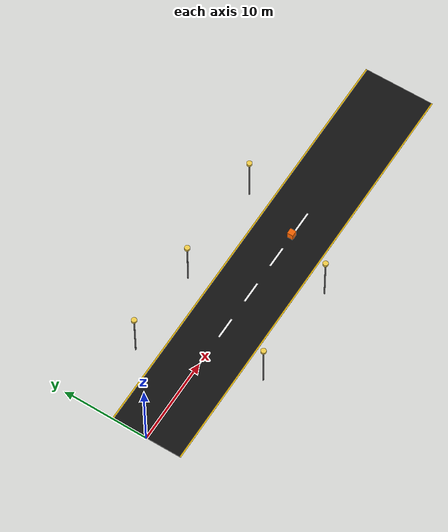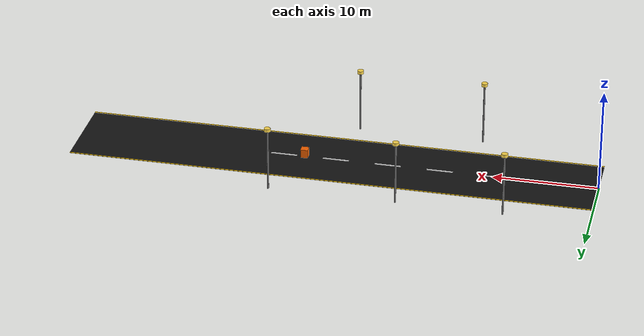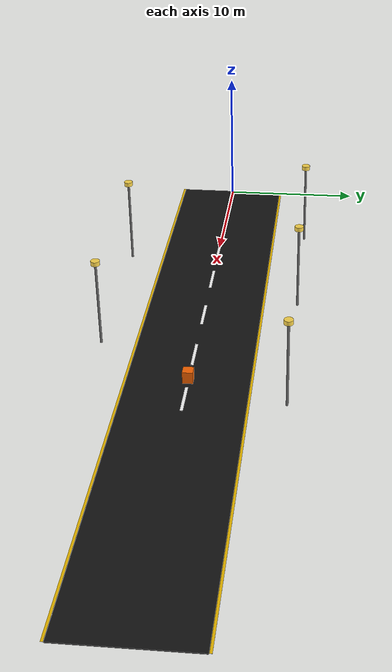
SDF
<sdf version="1.6">
 <world name="srm_campus">
  <model name="road_E">
   <static>true</static>
   <pose>25 0 0.03 0 0 0</pose>
   <link name="link">
    <collision name="col">
     <geometry><box><size>50.0 8.0 0.06</size></box></geometry>
     <surface><friction><ode><mu>1.0</mu><mu2>1.0</mu2></ode></friction></surface>
    </collision>
    <visual name="vis">
     <geometry><box><size>50.0 8.0 0.06</size></box></geometry>
     <material><ambient>0.06 0.06 0.06 1</ambient><diffuse>0.08 0.08 0.08 1</diffuse></material>
    </visual>
   </link>
  </model>
  <model name="el_ET">
   <static>true</static>
   <pose>25  4.1 0.065 0 0 0</pose>
   <link name="l">
    <collision name="c"><geometry><box><size>50 0.15 0.01</size></box></geometry></collision>
    <visual name="v">
     <geometry><box><size>50 0.15 0.01</size></box></geometry>
     <material><ambient>0.95 0.75 0.0 1</ambient><diffuse>0.95 0.75 0.0 1</diffuse></material>
    </visual>
   </link>
  </model>
  <model name="el_EB">
   <static>true</static>
   <pose>25 -4.1 0.065 0 0 0</pose>
   <link name="l">
    <collision name="c"><geometry><box><size>50 0.15 0.01</size></box></geometry></collision>
    <visual name="v">
     <geometry><box><size>50 0.15 0.01</size></box></geometry>
     <material><ambient>0.95 0.75 0.0 1</ambient><diffuse>0.95 0.75 0.0 1</diffuse></material>
    </visual>
   </link>
  </model>
  <model name="we01">
   <static>true</static>
   <pose>5 0 0.07 0 0 0</pose>
   <link name="l">
    <collision name="c"><geometry><box><size>2.5 0.20 0.01</size></box></geometry></collision>
    <visual name="v">
     <geometry><box><size>2.5 0.20 0.01</size></box></geometry>
     <material><ambient>1 1 1 1</ambient><diffuse>1 1 1 1</diffuse></material>
    </visual>
   </link>
  </model>
  <model name="we02">
   <static>true</static>
   <pose>10 0 0.07 0 0 0</pose>
   <link name="l">
    <collision name="c"><geometry><box><size>2.5 0.20 0.01</size></box></geometry></collision>
    <visual name="v">
     <geometry><box><size>2.5 0.20 0.01</size></box></geometry>
     <material><ambient>1 1 1 1</ambient><diffuse>1 1 1 1</diffuse></material>
    </visual>
   </link>
  </model>
  <model name="we03">
   <static>true</static>
   <pose>15 0 0.07 0 0 0</pose>
   <link name="l">
    <collision name="c"><geometry><box><size>2.5 0.20 0.01</size></box></geometry></collision>
    <visual name="v">
     <geometry><box><size>2.5 0.20 0.01</size></box></geometry>
     <material><ambient>1 1 1 1</ambient><diffuse>1 1 1 1</diffuse></material>
    </visual>
   </link>
  </model>
  <model name="we04">
   <static>true</static>
   <pose>20 0 0.07 0 0 0</pose>
   <link name="l">
    <collision name="c"><geometry><box><size>2.5 0.20 0.01</size></box></geometry></collision>
    <visual name="v">
     <geometry><box><size>2.5 0.20 0.01</size></box></geometry>
     <material><ambient>1 1 1 1</ambient><diffuse>1 1 1 1</diffuse></material>
    </visual>
   </link>
  </model>
  <model name="we05">
   <static>true</static>
   <pose>25 0 0.07 0 0 0</pose>
   <link name="l">
    <collision name="c"><geometry><box><size>2.5 0.20 0.01</size></box></geometry></collision>
    <visual name="v">
     <geometry><box><size>2.5 0.20 0.01</size></box></geometry>
     <material><ambient>1 1 1 1</ambient><diffuse>1 1 1 1</diffuse></material>
    </visual>
   </link>
  </model>
  <model name="we06">
   <static>true</static>
   <pose>30 0 0.07 0 0 0</pose>
   <link name="l">
    <collision name="c"><geometry><box><size>2.5 0.20 0.01</size></box></geometry></collision>
    <visual name="v">
     <geometry><box><size>2.5 0.20 0.01</size></box></geometry>
     <material><ambient>1 1 1 1</ambient><diffuse>1 1 1 1</diffuse></material>
    </visual>
   </link>
  </model>
  <model name="sl_et1">
   <static>true</static>
   <pose>8 6.5 3 0 0 0</pose>
   <link name="l">
    <collision name="c">
     <geometry><cylinder><radius>0.08</radius><length>6</length></cylinder></geometry>
    </collision>
    <visual name="trunk">
     <geometry><cylinder><radius>0.08</radius><length>6</length></cylinder></geometry>
     <material><ambient>0.4 0.4 0.4 1</ambient><diffuse>0.4 0.4 0.4 1</diffuse></material>
    </visual>
   </link>
  </model>
  <model name="sl_et1h">
   <static>true</static>
   <pose>8 6.5 6.2 0 0 0</pose>
   <link name="l">
    <collision name="c">
     <geometry><cylinder><radius>0.3</radius><length>0.3</length></cylinder></geometry>
    </collision>
    <visual name="v">
     <geometry><cylinder><radius>0.3</radius><length>0.3</length></cylinder></geometry>
     <material><ambient>0.95 0.75 0.2 1</ambient><diffuse>1.0 0.85 0.3 1</diffuse></material>
    </visual>
   </link>
  </model>
  <model name="sl_et2">
   <static>true</static>
   <pose>18 6.5 3 0 0 0</pose>
   <link name="l">
    <collision name="c">
     <geometry><cylinder><radius>0.08</radius><length>6</length></cylinder></geometry>
    </collision>
    <visual name="trunk">
     <geometry><cylinder><radius>0.08</radius><length>6</length></cylinder></geometry>
     <material><ambient>0.4 0.4 0.4 1</ambient><diffuse>0.4 0.4 0.4 1</diffuse></material>
    </visual>
   </link>
  </model>
  <model name="sl_et2h">
   <static>true</static>
   <pose>18 6.5 6.2 0 0 0</pose>
   <link name="l">
    <collision name="c">
     <geometry><cylinder><radius>0.3</radius><length>0.3</length></cylinder></geometry>
    </collision>
    <visual name="v">
     <geometry><cylinder><radius>0.3</radius><length>0.3</length></cylinder></geometry>
     <material><ambient>0.95 0.75 0.2 1</ambient><diffuse>1.0 0.85 0.3 1</diffuse></material>
    </visual>
   </link>
  </model>
  <model name="sl_et3">
   <static>true</static>
   <pose>30 6.5 3 0 0 0</pose>
   <link name="l">
    <collision name="c">
     <geometry><cylinder><radius>0.08</radius><length>6</length></cylinder></geometry>
    </collision>
    <visual name="trunk">
     <geometry><cylinder><radius>0.08</radius><length>6</length></cylinder></geometry>
     <material><ambient>0.4 0.4 0.4 1</ambient><diffuse>0.4 0.4 0.4 1</diffuse></material>
    </visual>
   </link>
  </model>
  <model name="sl_et3h">
   <static>true</static>
   <pose>30 6.5 6.2 0 0 0</pose>
   <link name="l">
    <collision name="c">
     <geometry><cylinder><radius>0.3</radius><length>0.3</length></cylinder></geometry>
    </collision>
    <visual name="v">
     <geometry><cylinder><radius>0.3</radius><length>0.3</length></cylinder></geometry>
     <material><ambient>0.95 0.75 0.2 1</ambient><diffuse>1.0 0.85 0.3 1</diffuse></material>
    </visual>
   </link>
  </model>
  <model name="sl_eb1">
   <static>true</static>
   <pose>12 -6.5 3 0 0 0</pose>
   <link name="l">
    <collision name="c">
     <geometry><cylinder><radius>0.08</radius><length>6</length></cylinder></geometry>
    </collision>
    <visual name="trunk">
     <geometry><cylinder><radius>0.08</radius><length>6</length></cylinder></geometry>
     <material><ambient>0.4 0.4 0.4 1</ambient><diffuse>0.4 0.4 0.4 1</diffuse></material>
    </visual>
   </link>
  </model>
  <model name="sl_eb1h">
   <static>true</static>
   <pose>12 -6.5 6.2 0 0 0</pose>
   <link name="l">
    <collision name="c">
     <geometry><cylinder><radius>0.3</radius><length>0.3</length></cylinder></geometry>
    </collision>
    <visual name="v">
     <geometry><cylinder><radius>0.3</radius><length>0.3</length></cylinder></geometry>
     <material><ambient>0.95 0.75 0.2 1</ambient><diffuse>1.0 0.85 0.3 1</diffuse></material>
    </visual>
   </link>
  </model>
  <model name="sl_eb2">
   <static>true</static>
   <pose>24 -6.5 3 0 0 0</pose>
   <link name="l">
    <collision name="c">
     <geometry><cylinder><radius>0.08</radius><length>6</length></cylinder></geometry>
    </collision>
    <visual name="trunk">
     <geometry><cylinder><radius>0.08</radius><length>6</length></cylinder></geometry>
     <material><ambient>0.4 0.4 0.4 1</ambient><diffuse>0.4 0.4 0.4 1</diffuse></material>
    </visual>
   </link>
  </model>
  <model name="sl_eb2h">
   <static>true</static>
   <pose>24 -6.5 6.2 0 0 0</pose>
   <link name="l">
    <collision name="c">
     <geometry><cylinder><radius>0.3</radius><length>0.3</length></cylinder></geometry>
    </collision>
    <visual name="v">
     <geometry><cylinder><radius>0.3</radius><length>0.3</length></cylinder></geometry>
     <material><ambient>0.95 0.75 0.2 1</ambient><diffuse>1.0 0.85 0.3 1</diffuse></material>
    </visual>
   </link>
  </model>
  <model name="obstacle_2">
   <static>false</static>
   <pose>28 0 0.45 0 0 0</pose>
   <link name="link">
    <collision name="col"><geometry><box><size>0.7 0.7 0.9</size></box></geometry></collision>
    <visual name="vis">
     <geometry><box><size>0.7 0.7 0.9</size></box></geometry>
     <material><ambient>1 0.40 0.0 1</ambient><diffuse>1 0.40 0.0 1</diffuse></material>
    </visual>
    <inertial>
     <mass>5</mass>
     <inertia><ixx>0.4</ixx><ixy>0</ixy><ixz>0</ixz><iyy>0.4</iyy><iyz>0</iyz><izz>0.4</izz></inertia>
    </inertial>
   </link>
  </model>
 </world>
</sdf>
